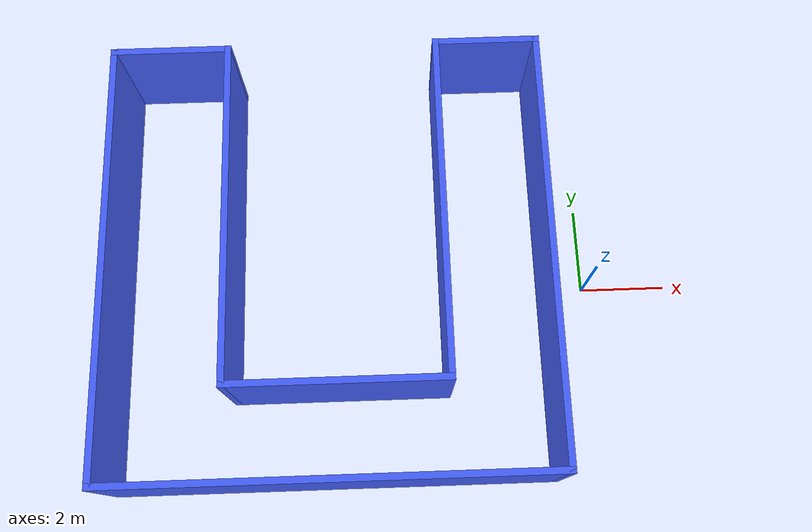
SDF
<?xml version='1.0'?>
<sdf version='1.6'>
  <model name='mybuild'>
    <pose frame=''>-5.94423 0.533822 0 0 -0 0</pose>
    <link name='Wall_12'>
      <collision name='Wall_12_Collision'>
        <geometry>
          <box>
            <size>10 0.15 2.5</size>
          </box>
        </geometry>
        <pose frame=''>0 0 1.25 0 -0 0</pose>
      </collision>
      <visual name='Wall_12_Visual'>
        <pose frame=''>0 0 1.25 0 -0 0</pose>
        <geometry>
          <box>
            <size>10 0.15 2.5</size>
          </box>
        </geometry>
        <material>
          <script>
            <uri>file://media/materials/scripts/gazebo.material</uri>
            <name>Gazebo/Grey</name>
          </script>
          <ambient>0.270588 0.380392 1 1</ambient>
        </material>
        <meta>
          <layer>0</layer>
        </meta>
      </visual>
      <pose frame=''>-0.000233 -4.95018 0 0 -0 0</pose>
    </link>
    <link name='Wall_13'>
      <collision name='Wall_13_Collision'>
        <geometry>
          <box>
            <size>10.0504 0.15 2.5</size>
          </box>
        </geometry>
        <pose frame=''>0 0 1.25 0 -0 0</pose>
      </collision>
      <visual name='Wall_13_Visual'>
        <pose frame=''>0 0 1.25 0 -0 0</pose>
        <geometry>
          <box>
            <size>10.0504 0.15 2.5</size>
          </box>
        </geometry>
        <material>
          <script>
            <uri>file://media/materials/scripts/gazebo.material</uri>
            <name>Gazebo/Grey</name>
          </script>
          <ambient>0.270588 0.380392 1 1</ambient>
        </material>
        <meta>
          <layer>0</layer>
        </meta>
      </visual>
      <pose frame=''>4.925 0 0 0 -0 1.57075</pose>
    </link>
    <link name='Wall_14'>
      <collision name='Wall_14_Collision'>
        <geometry>
          <box>
            <size>2.5 0.15 2.5</size>
          </box>
        </geometry>
        <pose frame=''>0 0 1.25 0 -0 0</pose>
      </collision>
      <visual name='Wall_14_Visual'>
        <pose frame=''>0 0 1.25 0 -0 0</pose>
        <geometry>
          <box>
            <size>2.5 0.15 2.5</size>
          </box>
        </geometry>
        <material>
          <script>
            <uri>file://media/materials/scripts/gazebo.material</uri>
            <name>Gazebo/Grey</name>
          </script>
          <ambient>0.270588 0.380392 1 1</ambient>
        </material>
        <meta>
          <layer>0</layer>
        </meta>
      </visual>
      <pose frame=''>3.75023 4.95018 0 0 -0 3.14159</pose>
    </link>
    <link name='Wall_15'>
      <collision name='Wall_15_Collision'>
        <geometry>
          <box>
            <size>8.05 0.15 2.5</size>
          </box>
        </geometry>
        <pose frame=''>0 0 1.25 0 -0 0</pose>
      </collision>
      <visual name='Wall_15_Visual'>
        <pose frame=''>0 0 1.25 0 -0 0</pose>
        <geometry>
          <box>
            <size>8.05 0.15 2.5</size>
          </box>
        </geometry>
        <material>
          <script>
            <uri>file://media/materials/scripts/gazebo.material</uri>
            <name>Gazebo/Grey</name>
          </script>
          <ambient>0.270588 0.380392 1 1</ambient>
        </material>
        <meta>
          <layer>0</layer>
        </meta>
      </visual>
      <pose frame=''>2.57523 1.00018 0 0 0 -1.5708</pose>
    </link>
    <link name='Wall_16'>
      <collision name='Wall_16_Collision'>
        <geometry>
          <box>
            <size>5 0.15 2.5</size>
          </box>
        </geometry>
        <pose frame=''>0 0 1.25 0 -0 0</pose>
      </collision>
      <visual name='Wall_16_Visual'>
        <pose frame=''>0 0 1.25 0 -0 0</pose>
        <geometry>
          <box>
            <size>5 0.15 2.5</size>
          </box>
        </geometry>
        <material>
          <script>
            <uri>file://media/materials/scripts/gazebo.material</uri>
            <name>Gazebo/Grey</name>
          </script>
          <ambient>0.270588 0.380392 1 1</ambient>
        </material>
        <meta>
          <layer>0</layer>
        </meta>
      </visual>
      <pose frame=''>0.150232 -2.94982 0 0 -0 3.14159</pose>
    </link>
    <link name='Wall_17'>
      <collision name='Wall_17_Collision'>
        <geometry>
          <box>
            <size>8.027 0.15 2.5</size>
          </box>
        </geometry>
        <pose frame=''>0 0 1.25 0 -0 0</pose>
      </collision>
      <visual name='Wall_17_Visual'>
        <pose frame=''>0 0 1.25 0 -0 0</pose>
        <geometry>
          <box>
            <size>8.027 0.15 2.5</size>
          </box>
        </geometry>
        <material>
          <script>
            <uri>file://media/materials/scripts/gazebo.material</uri>
            <name>Gazebo/Grey</name>
          </script>
          <ambient>0.270588 0.380392 1 1</ambient>
        </material>
        <meta>
          <layer>0</layer>
        </meta>
      </visual>
      <pose frame=''>-2.27477 0.988678 0 0 -0 1.5708</pose>
    </link>
    <link name='Wall_24'>
      <collision name='Wall_24_Collision'>
        <geometry>
          <box>
            <size>10.027 0.15 2.5</size>
          </box>
        </geometry>
        <pose frame=''>0 0 1.25 0 -0 0</pose>
      </collision>
      <visual name='Wall_24_Visual'>
        <pose frame=''>0 0 1.25 0 -0 0</pose>
        <geometry>
          <box>
            <size>10.027 0.15 2.5</size>
          </box>
        </geometry>
        <material>
          <script>
            <uri>file://media/materials/scripts/gazebo.material</uri>
            <name>Gazebo/Grey</name>
          </script>
          <ambient>0.270588 0.380392 1 1</ambient>
        </material>
        <meta>
          <layer>0</layer>
        </meta>
      </visual>
      <pose frame=''>-4.925 -0.0115 0 0 -0 1.57075</pose>
    </link>
    <link name='Wall_25'>
      <collision name='Wall_25_Collision'>
        <geometry>
          <box>
            <size>2.8 0.15 2.5</size>
          </box>
        </geometry>
        <pose frame=''>0 0 1.25 0 -0 0</pose>
      </collision>
      <visual name='Wall_25_Visual'>
        <pose frame=''>0 0 1.25 0 -0 0</pose>
        <geometry>
          <box>
            <size>2.8 0.15 2.5</size>
          </box>
        </geometry>
        <material>
          <script>
            <uri>file://media/materials/scripts/gazebo.material</uri>
            <name>Gazebo/Grey</name>
          </script>
          <ambient>0.270588 0.380392 1 1</ambient>
        </material>
        <meta>
          <layer>0</layer>
        </meta>
      </visual>
      <pose frame=''>-3.59977 4.92718 0 0 -0 0</pose>
    </link>
    <static>1</static>
  </model>
</sdf>
